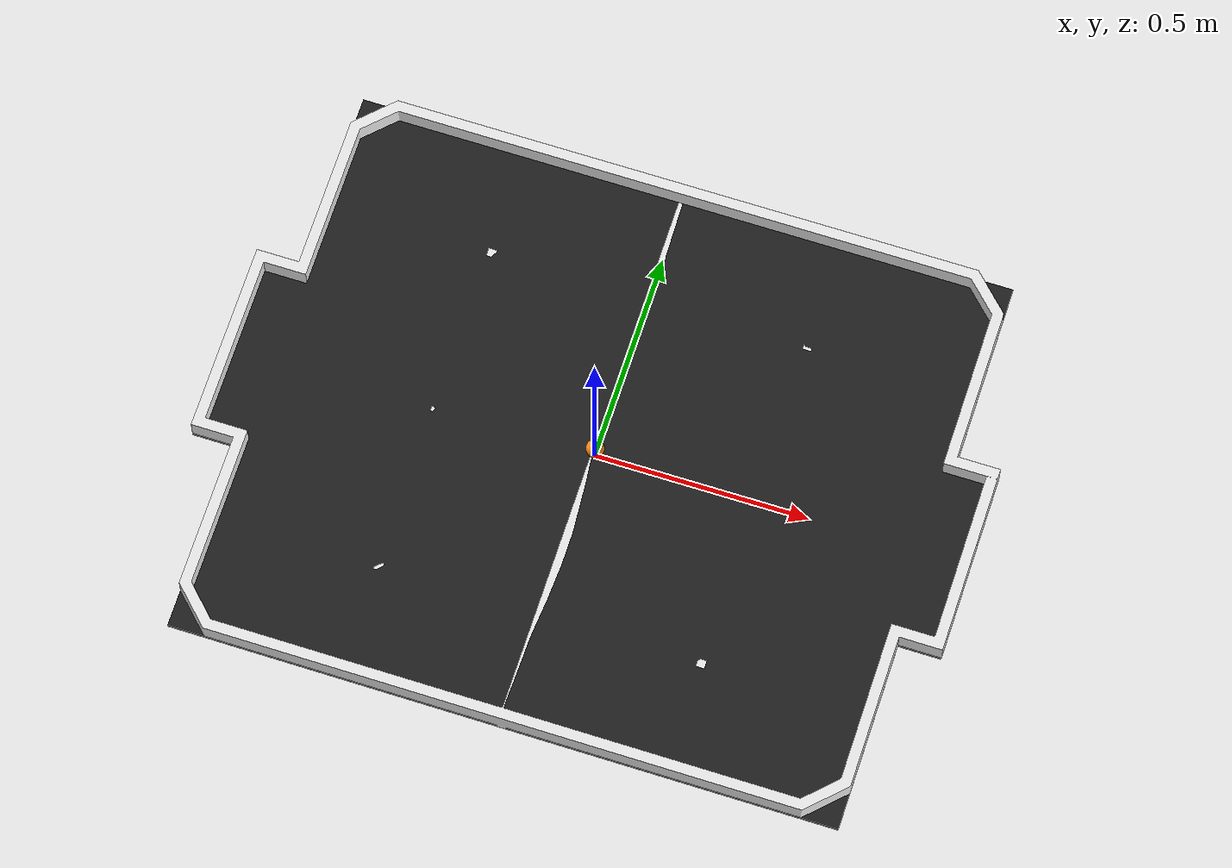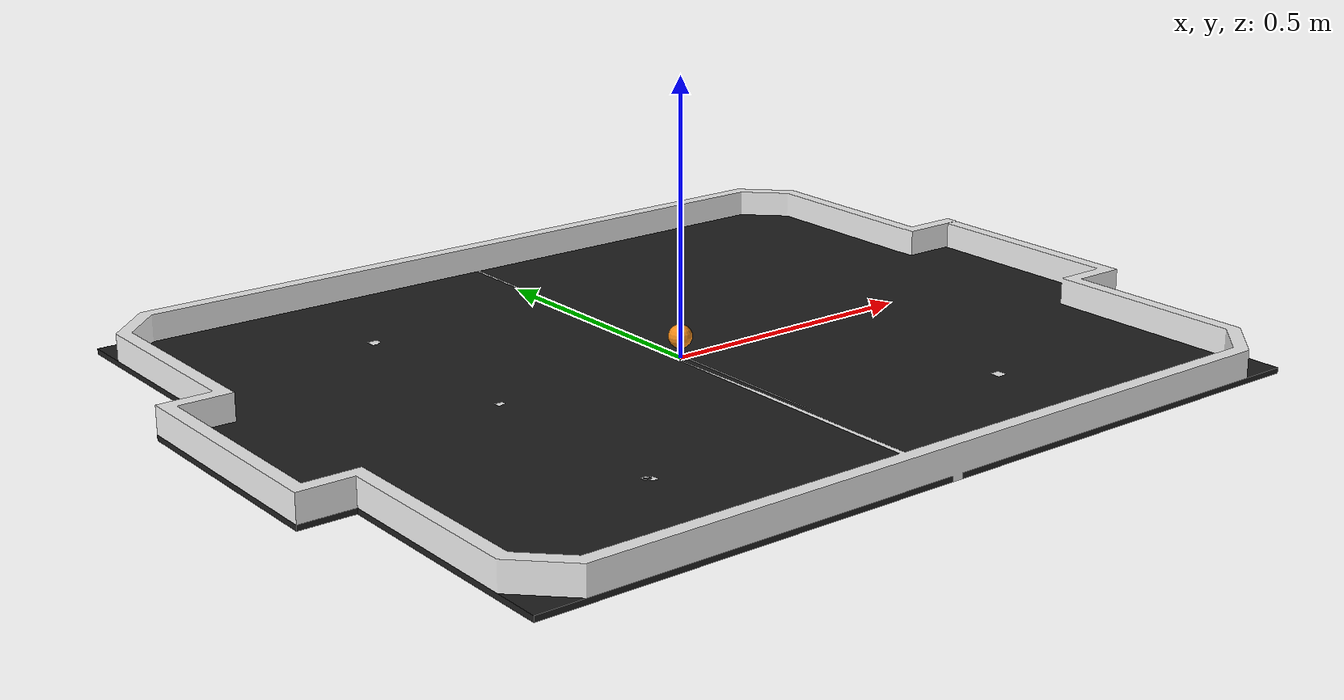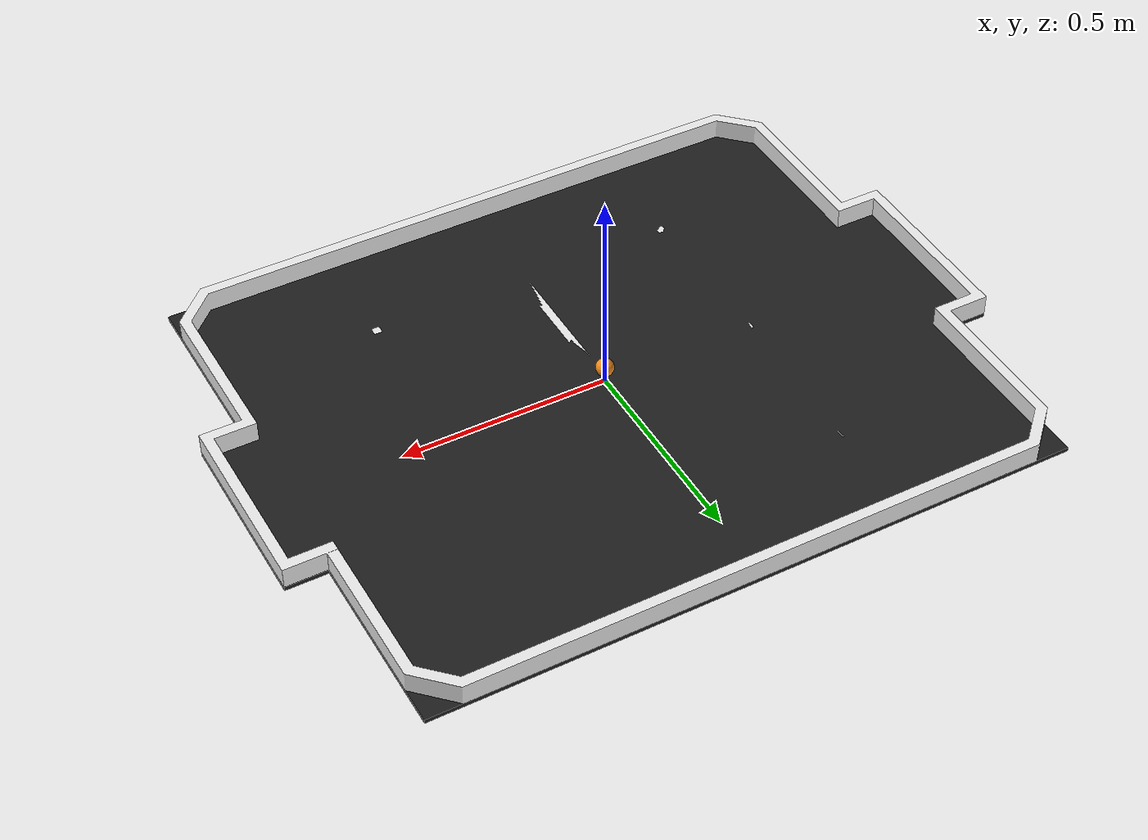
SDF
<?xml version="1.0" ?>

<!-- Simple world with vss field and ball
  Ref:
  https://bitbucket.org/osrf/gazebo/src/gazebo11/worlds/robocup09_spl_field.world -->

<!-- Top view version -->

<sdf version="1.5">
  <world name="default">
    <!-- A global light source -->
    <include>
      <uri>model://my_sun</uri>
    </include>

    <!-- A ground plane -->

    <!-- VSS Field -->
    <include>
      <uri>model://vss_field</uri>
    </include>

    <!-- VSS ball -->
    <include>
      <pose>0 0 0.040 0 0 0</pose>
      <uri>model://vss_ball</uri>
    </include>

    <physics type='ode'>
      <real_time_factor>0.5</real_time_factor>
    </physics>

    <!-- Configure camera angles for isometric view -->
    <gui fullscreen='0'>
      <camera name='user_camera'>
        <pose frame=''>0 0 0 -1.570769 1.570769 0</pose>
        <view_controller>ortho</view_controller>
        <projection_type>orthographic</projection_type>
      </camera>
    </gui>
  </world>
</sdf>

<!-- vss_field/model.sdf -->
<!-- To generate a sdf file from urdf, run the command
    gz sdf -p /model.urdf > /model.sdf -->

<!-- Physical parameters (contact properties) taken from
https://bitbucket.org/osrf/gazebo/src/gazebo11/models/ground_plane/model.sdf -->

<sdf version="1.5">
  <model name='vss_field'>

    <static>1</static>

    <link name='base_link'>
      <pose frame=''>0 0 0 0 0 0</pose>

      <inertial>
        <pose frame=''>0 0 0.01 0 0 0</pose>
        <mass>4.8995</mass>
        <inertia>
          <ixx>0.541513</ixx>
          <ixy>5.91216e-07</ixy>
          <ixz>-5.64316e-09</ixz>
          <iyy>0.271333</iyy>
          <iyz>1.16883e-08</iyz>
          <izz>0.81109</izz>
        </inertia>
      </inertial>

      <collision name='base_link_collision'>
        <pose frame=''>0 0 0 0 0 0</pose>
        <geometry>
          <mesh>
            <scale>1 1 1</scale>
            <uri>model://vss_field/meshes/base_link_col.stl</uri>
          </mesh>
        </geometry>
        <surface>
          <contact>
            <collide_bitmask>0xffff</collide_bitmask>
          </contact>
          <friction>
            <ode>
              <mu>0.6</mu>
              <mu2>0.6</mu2>
            </ode>
            <torsional>
              <ode/>
            </torsional>
          </friction>
          <bounce/>
        </surface>
        <max_contacts>20</max_contacts>
      </collision>
      <collision name='base_link_fixed_joint_lump__laterais_link_collision_1'>
        <pose frame=''>0 0 0 0 0 0</pose>
        <geometry>
          <mesh>
            <scale>1 1 1</scale>
            <uri>model://vss_field/meshes/laterais_link_col.stl</uri>
          </mesh>
        </geometry>

      </collision>
      <visual name='base_link_visual'>
        <pose frame=''>0 0 0 0 0 0</pose>
        <geometry>
          <mesh>
            <scale>1 1 1</scale>
            <uri>model://vss_field/meshes/base_link.stl</uri>
          </mesh>
        </geometry>
        <material>
          <script>
            <name>Gazebo/FlatBlack</name>
            <uri>file://media/materials/scripts/gazebo.material</uri>
          </script>
        </material>
      </visual>

      <visual name='laterais_link_visual'>
        <pose frame=''>0 0 0 0 0 0</pose>
        <geometry>
          <mesh>
            <scale>1 1 1</scale>
            <uri>model://vss_field/meshes/laterais_link.stl</uri>
          </mesh>
        </geometry>
        <material>
          <script>
            <name>Gazebo/White</name>
            <uri>file://media/materials/scripts/gazebo.material</uri>
          </script>
        </material>
      </visual>

    </link>

  </model>
</sdf>

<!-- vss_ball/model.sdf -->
<!-- File generated with Gazebo Model Editor
Proprieties according to IEEE 3x3 rules -->

<sdf version="1.5">
  <model name='vss_ball'>

    <link name='sphere'>
      <inertial>
        <mass>0.046</mass>
        <inertia>
          <!-- inertia based on solid sphere 2/5 mr^2 -->
          <ixx>2.935e-05</ixx>
          <iyy>2.935e-05</iyy>
          <izz>2.935e-05</izz>
          <ixy>0</ixy>
          <ixz>0</ixz>
          <iyz>0</iyz>
        </inertia>
        <pose frame=''>0 0 0 0 0 0</pose>
      </inertial>

      <pose frame=''>0 0 0 0 0 0</pose>
      <gravity>1</gravity>
      <self_collide>0</self_collide>
      <kinematic>0</kinematic>
      <enable_wind>0</enable_wind>

      <visual name='visual'>
        <pose frame=''>0 0 0 0 0 0</pose>
        <geometry>
          <sphere>
            <radius>0.02135</radius>
          </sphere>
        </geometry>
        <material>
          <script>
            <name>Gazebo/Orange</name>
            <uri>file://media/materials/scripts/gazebo.material</uri>
          </script>
        </material>
        <transparency>0</transparency>
        <cast_shadows>0</cast_shadows>
      </visual>

      <collision name='collision'>
        <laser_retro>0</laser_retro>
        <max_contacts>10</max_contacts>
        <pose frame=''>0 0 0 0 0 0</pose>
        <geometry>
          <sphere>
            <radius>0.02135</radius>
          </sphere>
        </geometry>
        <surface>
          <friction>
            <ode>
              <mu>0.1</mu>
              <mu2>0.1</mu2>
            </ode>
            <torsional>
              <coefficient>1</coefficient>
              <patch_radius>0</patch_radius>
              <surface_radius>0</surface_radius>
              <use_patch_radius>1</use_patch_radius>
            </torsional>
          </friction>
          <bounce>
            <restitution_coefficient>0.9</restitution_coefficient>
            <threshold>1e+06</threshold>
          </bounce>
          <contact>
            <collide_without_contact>0</collide_without_contact>
            <collide_without_contact_bitmask>1</collide_without_contact_bitmask>
            <collide_bitmask>1</collide_bitmask>
            <ode>
              <soft_cfm>0</soft_cfm>
              <soft_erp>0.2</soft_erp>
              <kp>1e+13</kp>
              <kd>1</kd>
              <max_vel>10</max_vel>
              <min_depth>0</min_depth>
            </ode>
          </contact>
        </surface>
      </collision>
    </link>
    <static>0</static>
    <allow_auto_disable>1</allow_auto_disable>
  </model>
</sdf>
